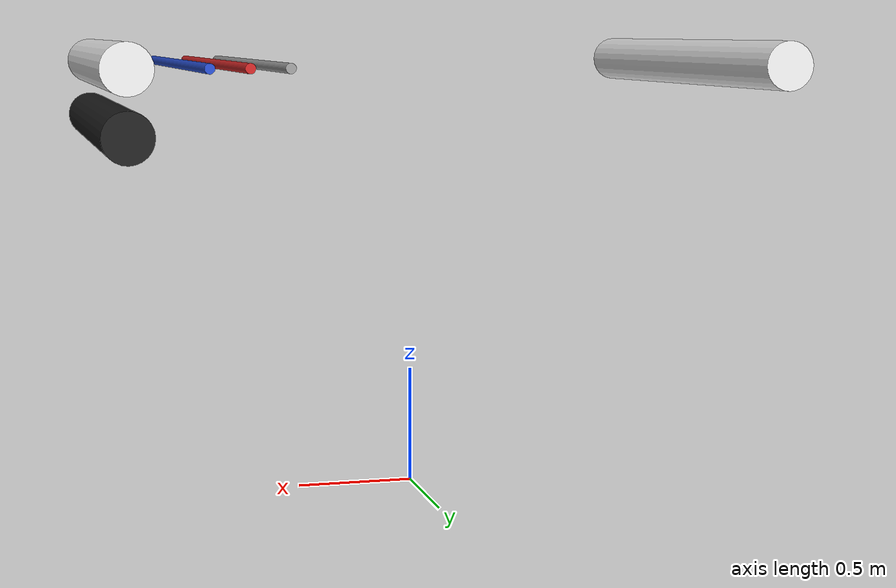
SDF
<?xml version='1.0'?>
<sdf version='1.6'>
  <model name='white_pipe_left'>
    <static>1</static>
    <pose frame=''>0 0 1.84 0 0 0</pose>
    <link name='link_0'>
      <visual name='visual'>
        <pose frame=''>-1.3 0 0 1.57 0 0</pose>
        <geometry>
          <cylinder>
            <radius>0.1</radius>
            <length>2</length>
          </cylinder>
        </geometry>
        <material>
          <script>
            <uri>file://media/materials/scripts/gazebo.material</uri>
            <name>Gazebo/White</name>
          </script>
        </material>
      </visual>
      <collision name='collision'>
        <pose frame=''>-1.3 0 0 1.57 0 0</pose>
        <geometry>
          <cylinder>
            <radius>0.1</radius>
            <length>2</length>
          </cylinder>
        </geometry>
      </collision>
    </link>
  </model>
  <model name='white_pipe_right'>
    <static>1</static>
    <pose frame=''>0 0 1.84 0 0 0</pose>
    <link name='link_0'>
      <visual name='visual'>
        <pose frame=''>1.3 0 0 1.57 0 0</pose>
        <geometry>
          <cylinder>
            <radius>0.1</radius>
            <length>2</length>
          </cylinder>
        </geometry>
        <material>
          <script>
            <uri>file://media/materials/scripts/gazebo.material</uri>
            <name>Gazebo/White</name>
          </script>
        </material>
      </visual>
      <collision name='collision'>
        <pose frame=''>1.3 0 0 1.57 0 0</pose>
        <geometry>
          <cylinder>
            <radius>0.1</radius>
            <length>2</length>
          </cylinder>
        </geometry>
      </collision>
    </link>
  </model>
  <model name='black_pipe_right'>
    <static>1</static>
    <pose frame=''>0 0 1.84 0 0 0</pose>
    <link name='link_0'>
      <visual name='visual'>
        <pose frame=''>1.3 0 -0.25 1.57 0 0</pose>
        <geometry>
          <cylinder>
            <radius>0.1</radius>
            <length>2</length>
          </cylinder>
        </geometry>
        <material>
          <script>
            <uri>file://media/materials/scripts/gazebo.material</uri>
            <name>Gazebo/Black</name>
          </script>
        </material>
      </visual>
      <collision name='collision'>
        <pose frame=''>1.3 0 -0.25 1.57 0 0</pose>
        <geometry>
          <cylinder>
            <radius>0.1</radius>
            <length>2</length>
          </cylinder>
        </geometry>
      </collision>
    </link>
  </model>
  <model name='grey_pipe_right'>
    <static>1</static>
    <pose frame=''>0 0 1.84 0 0 0</pose>
    <link name='link_0'>
      <visual name='visual'>
        <pose frame=''>0.7 0 0 1.57 0 0</pose>
        <geometry>
          <cylinder>
            <radius>0.02</radius>
            <length>2</length>
          </cylinder>
        </geometry>
        <material>
          <script>
            <uri>file://media/materials/scripts/gazebo.material</uri>
            <name>Gazebo/Grey</name>
          </script>
        </material>
      </visual>
      <collision name='collision'>
        <pose frame=''>0.7 0 0 1.57 0 0</pose>
        <geometry>
          <cylinder>
            <radius>0.02</radius>
            <length>2</length>
          </cylinder>
        </geometry>
      </collision>
    </link>
  </model><model name='red_pipe_right'>
    <static>1</static>
    <pose frame=''>0 0 1.84 0 0 0</pose>
    <link name='link_0'>
      <visual name='visual'>
        <pose frame=''>0.85 0 0 1.57 0 0</pose>
        <geometry>
          <cylinder>
            <radius>0.02</radius>
            <length>2</length>
          </cylinder>
        </geometry>
        <material>
          <script>
            <uri>file://media/materials/scripts/gazebo.material</uri>
            <name>Gazebo/Red</name>
          </script>
        </material>
      </visual>
      <collision name='collision'>
        <pose frame=''>0.85 0 0 1.57 0 0</pose>
        <geometry>
          <cylinder>
            <radius>0.02</radius>
            <length>2</length>
          </cylinder>
        </geometry>
      </collision>
    </link>
  </model>
  <model name='blue_pipe_right'>
    <static>1</static>
    <pose frame=''>0 0 1.84 0 0 0</pose>
    <link name='link_0'>
      <visual name='visual'>
        <pose frame=''>1 0 0 1.57 0 0</pose>
        <geometry>
          <cylinder>
            <radius>0.02</radius>
            <length>2</length>
          </cylinder>
        </geometry>
        <material>
          <script>
            <uri>file://media/materials/scripts/gazebo.material</uri>
            <name>Gazebo/Blue</name>
          </script>
        </material>
      </visual>
      <collision name='collision'>
        <pose frame=''>1 0 0 1.57 0 0</pose>
        <geometry>
          <cylinder>
            <radius>0.02</radius>
            <length>2</length>
          </cylinder>
        </geometry>
      </collision>
    </link>
  </model>
</sdf>
